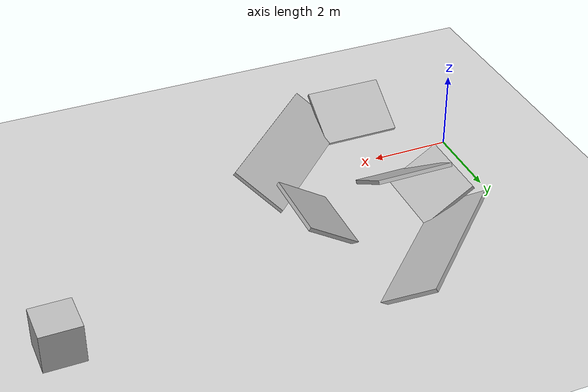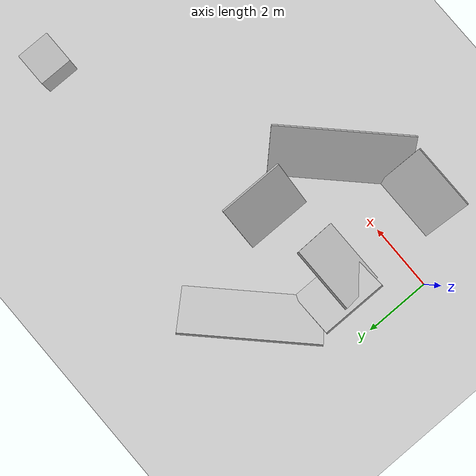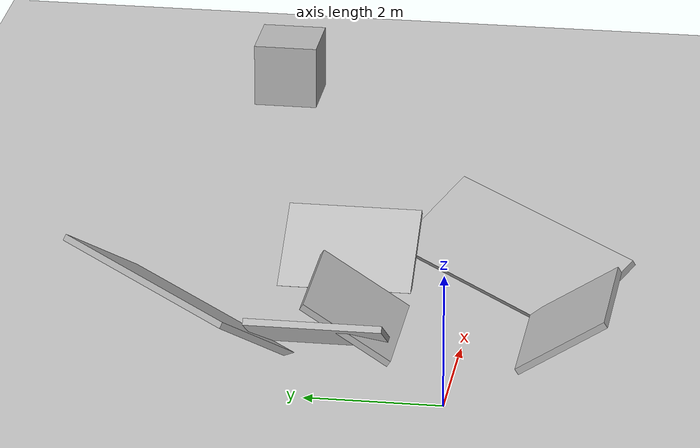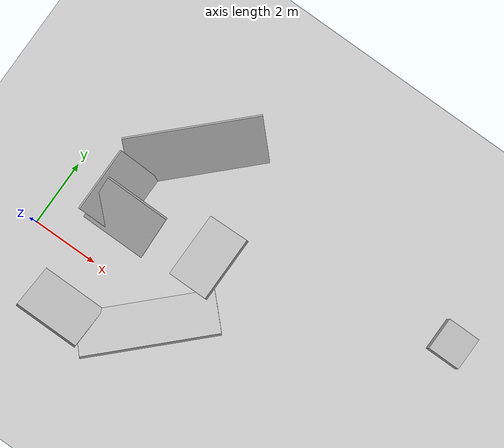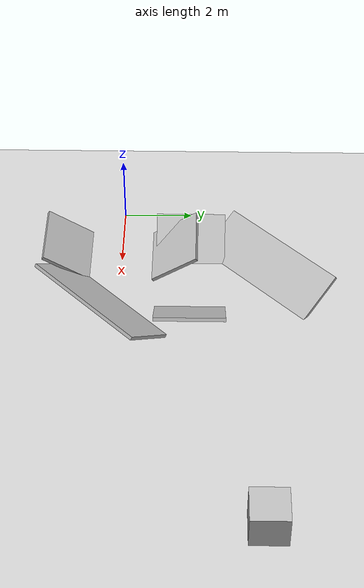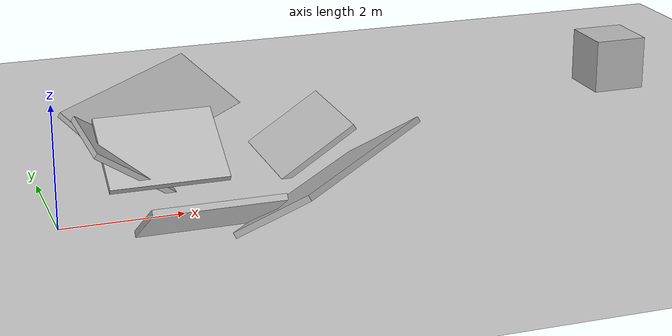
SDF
<sdf version="1.4">
 <world name="default">
  <include><uri>model://ground_plane</uri></include>
  <include><uri>model://sun</uri></include>
  <include><static>true</static><uri>model://gazebo_worlds_cdt/models/funnel_left</uri></include>
  <include>
   <static>true</static>
   <pose>3 1 0 0 0 1.571</pose>
   <uri>model://gazebo_worlds_cdt/models/funnel_right</uri>
  </include>
  <include>
   <static>true</static>
   <pose>11.5 4 0.5 0 0 0</pose>
   <uri>model://gazebo_worlds_cdt/models/april_box_16h5</uri>
  </include>
 </world>
</sdf>

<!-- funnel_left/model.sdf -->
<sdf version="1.4">
    <model name="funnel_left">
      <pose>1.0 0.0 0.2 0 0 0</pose>
      <static>true</static>
      <link name="right1">
        <visual name="box_visual">
          <pose>1 -1.55 0.35 1 0 0</pose>
          <geometry>
          <mesh>
            <uri>model://gazebo_worlds_cdt/models/grass_box/meshes/grass_box.dae</uri>
            <scale>2 0.1 1.5</scale>
          </mesh>
          </geometry>
        </visual>
        <collision name="box_collision">
          <pose>1 -1.55 0.35 1 0 0</pose>
          <geometry>
            <box>
              <size>2 0.1 1.5</size>
            </box>
          </geometry>
        </collision>
      </link>
      <link name="left1">
        <visual name="box_visual">
          <pose>1 1.55 0.35 -1 0 0</pose>
          <geometry>
          <mesh>
            <uri>model://gazebo_worlds_cdt/models/grass_box/meshes/grass_box.dae</uri>
            <scale>2 0.1 1.5</scale>
          </mesh>
          </geometry>
        </visual>
        <collision name="box_collision">
          <pose>1 1.55 0.35 -1 0 0</pose>
          <geometry>
            <box>
              <size>2 0.1 1.5</size>
            </box>
          </geometry>
        </collision>
      </link>

      <link name="right2">
        <visual name="box_visual">
          <pose>3.25 -0.5 0.35 1 0 0.7855</pose>
          <geometry>
          <mesh>
            <uri>model://gazebo_worlds_cdt/models/grass_box/meshes/grass_box.dae</uri>
            <scale>4 0.1 1.5</scale>
          </mesh>
          </geometry>
        </visual>
        <collision name="box_collision">
          <pose>3.25 -0.5 0.35 1 0 0.7855</pose>
          <geometry>
            <box>
              <size>4 0.1 1.5</size>
            </box>
          </geometry>
        </collision>
      </link>
    </model>
</sdf>

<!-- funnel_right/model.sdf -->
<sdf version="1.4">
    <model name="funnel_right">
      <pose>1.0 0.0 0.2 0 0 0</pose>
      <static>true</static>
      <link name="right1">
        <visual name="box_visual">
          <pose>1 -1.55 0.35 1 0 0</pose>
          <geometry>
          <mesh>
            <uri>model://gazebo_worlds_cdt/models/grass_box/meshes/grass_box.dae</uri>
            <scale>2 0.1 1.5</scale>
          </mesh>
          </geometry>
        </visual>
        <collision name="box_collision">
          <pose>1 -1.55 0.35 1 0 0</pose>
          <geometry>
            <box>
              <size>2 0.1 1.5</size>
            </box>
          </geometry>
        </collision>
      </link>
      <link name="left1">
        <visual name="box_visual">
          <pose>1 1.55 0.35 -1 0 0</pose>
          <geometry>
          <mesh>
            <uri>model://gazebo_worlds_cdt/models/grass_box/meshes/grass_box.dae</uri>
            <scale>2 0.1 1.5</scale>
          </mesh>
          </geometry>
        </visual>
        <collision name="box_collision">
          <pose>1 1.55 0.35 -1 0 0</pose>
          <geometry>
            <box>
              <size>2 0.1 1.5</size>
            </box>
          </geometry>
        </collision>
      </link>

      <link name="left2">
        <visual name="box_visual">
          <pose>3.25 0.5 0.35 -1 0 -0.7855</pose>
          <geometry>
          <mesh>
            <uri>model://gazebo_worlds_cdt/models/grass_box/meshes/grass_box.dae</uri>
            <scale>4 0.1 1.5</scale>
          </mesh>
          </geometry>
        </visual>
        <collision name="box_collision">
          <pose>3.25 0.5 0.35 -1 0 -0.7855</pose>
          <geometry>
            <box>
              <size>4 0.1 1.5</size>
            </box>
          </geometry>
        </collision>
      </link>
    </model>
</sdf>

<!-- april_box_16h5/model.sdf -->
<sdf version="1.4">
  <model name="april_box_16h5">
    <pose>0 0 0 0 0 0</pose>
    <static>true</static>
    <link name="april_tag_16h5_link">

      <collision name="april_tag_16h5_collision">
        <pose>0 0 0 0 0 0</pose>
        <geometry>
          <mesh>
            <uri>model://gazebo_worlds_cdt/models/april_box_16h5/meshes/april_box_16h5.dae</uri>
          </mesh>
        </geometry>
      </collision>

      <visual name="april_tag_16h5_visual">
        <pose>0 0 0 0 0 0</pose>
        <geometry>
          <mesh>
            <uri>model://gazebo_worlds_cdt/models/april_box_16h5/meshes/april_box_16h5.dae</uri>
          </mesh>
        </geometry>
      </visual>

    </link>
  </model>
</sdf>
